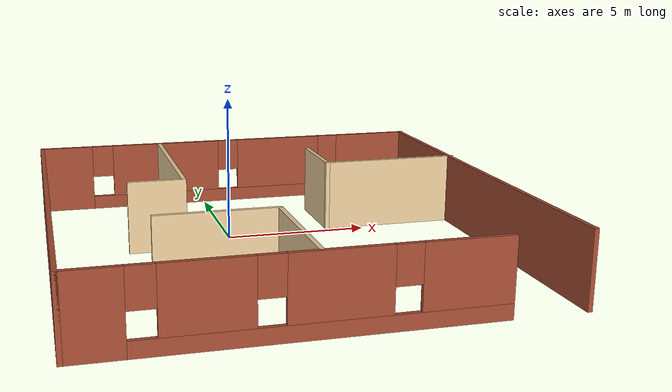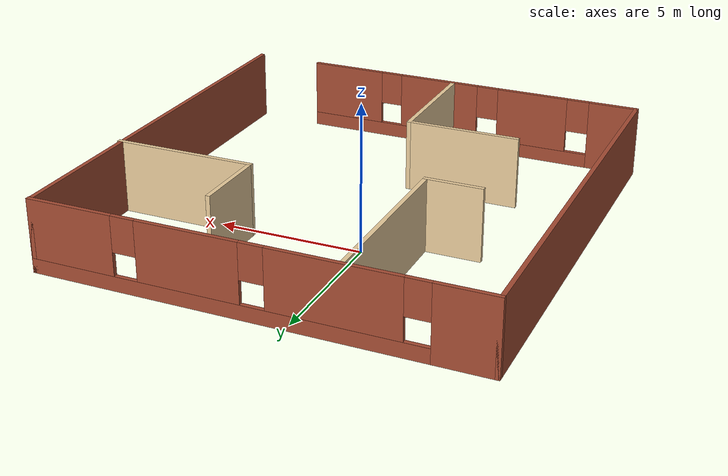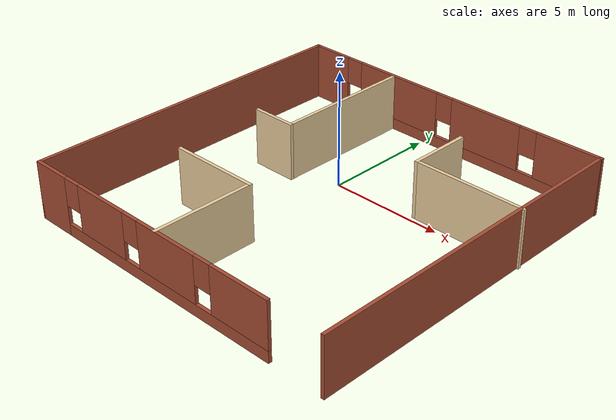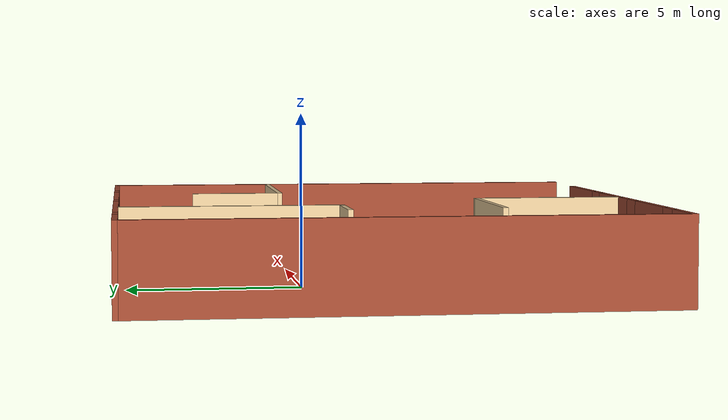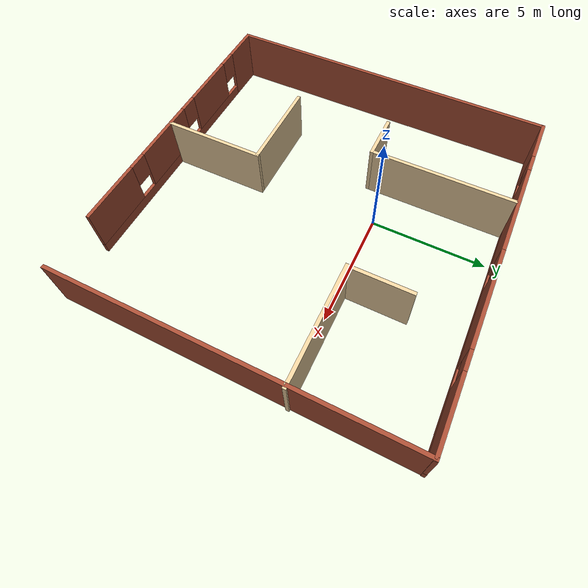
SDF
<?xml version='1.0'?>
<sdf version='1.7'>
  <model name='gMaze6'>
    <pose>1.13811 -2.1707 0 0 -0 0</pose>
    <link name='Wall_0'>
      <pose>-0.025043 7.425 0 0 -0 0</pose>
      <visual name='Wall_0_Visual_0'>
        <pose>-6.50945 0 1.25 0 -0 0</pose>
        <geometry>
          <box>
            <size>1.98109 0.15 2.5</size>
          </box>
        </geometry>
        <material>
          <script>
            <uri>file://media/materials/scripts/gazebo.material</uri>
            <name>Gazebo/Bricks</name>
          </script>
          <ambient>1 1 1 1</ambient>
        </material>
        <meta>
          <layer>0</layer>
        </meta>
      </visual>
      <collision name='Wall_0_Collision_0'>
        <geometry>
          <box>
            <size>1.98109 0.15 2.5</size>
          </box>
        </geometry>
        <pose>-6.50945 0 1.25 0 -0 0</pose>
      </collision>
      <visual name='Wall_0_Visual_1'>
        <pose>0.990545 0 0.25 0 -0 0</pose>
        <geometry>
          <box>
            <size>13.0189 0.15 0.5</size>
          </box>
        </geometry>
        <material>
          <script>
            <uri>file://media/materials/scripts/gazebo.material</uri>
            <name>Gazebo/Bricks</name>
          </script>
          <ambient>1 1 1 1</ambient>
        </material>
        <meta>
          <layer>0</layer>
        </meta>
      </visual>
      <collision name='Wall_0_Collision_1'>
        <geometry>
          <box>
            <size>13.0189 0.15 0.5</size>
          </box>
        </geometry>
        <pose>0.990545 0 0.25 0 -0 0</pose>
      </collision>
      <visual name='Wall_0_Visual_2'>
        <pose>-2.60363 0 1.5 0 -0 0</pose>
        <geometry>
          <box>
            <size>4.23056 0.15 2</size>
          </box>
        </geometry>
        <material>
          <script>
            <uri>file://media/materials/scripts/gazebo.material</uri>
            <name>Gazebo/Bricks</name>
          </script>
          <ambient>1 1 1 1</ambient>
        </material>
        <meta>
          <layer>0</layer>
        </meta>
      </visual>
      <collision name='Wall_0_Collision_2'>
        <geometry>
          <box>
            <size>4.23056 0.15 2</size>
          </box>
        </geometry>
        <pose>-2.60363 0 1.5 0 -0 0</pose>
      </collision>
      <visual name='Wall_0_Visual_3'>
        <pose>2.02238 0 1.5 0 -0 0</pose>
        <geometry>
          <box>
            <size>3.42145 0.15 2</size>
          </box>
        </geometry>
        <material>
          <script>
            <uri>file://media/materials/scripts/gazebo.material</uri>
            <name>Gazebo/Bricks</name>
          </script>
          <ambient>1 1 1 1</ambient>
        </material>
        <meta>
          <layer>0</layer>
        </meta>
      </visual>
      <collision name='Wall_0_Collision_3'>
        <geometry>
          <box>
            <size>3.42145 0.15 2</size>
          </box>
        </geometry>
        <pose>2.02238 0 1.5 0 -0 0</pose>
      </collision>
      <visual name='Wall_0_Visual_4'>
        <pose>6.01655 0 1.5 0 -0 0</pose>
        <geometry>
          <box>
            <size>2.9669 0.15 2</size>
          </box>
        </geometry>
        <material>
          <script>
            <uri>file://media/materials/scripts/gazebo.material</uri>
            <name>Gazebo/Bricks</name>
          </script>
          <ambient>1 1 1 1</ambient>
        </material>
        <meta>
          <layer>0</layer>
        </meta>
      </visual>
      <collision name='Wall_0_Collision_4'>
        <geometry>
          <box>
            <size>2.9669 0.15 2</size>
          </box>
        </geometry>
        <pose>6.01655 0 1.5 0 -0 0</pose>
      </collision>
      <visual name='Wall_0_Visual_5'>
        <pose>-5.11891 0 1.9 0 -0 0</pose>
        <geometry>
          <box>
            <size>0.8 0.15 1.2</size>
          </box>
        </geometry>
        <material>
          <script>
            <uri>file://media/materials/scripts/gazebo.material</uri>
            <name>Gazebo/Bricks</name>
          </script>
          <ambient>1 1 1 1</ambient>
        </material>
        <meta>
          <layer>0</layer>
        </meta>
      </visual>
      <collision name='Wall_0_Collision_5'>
        <geometry>
          <box>
            <size>0.8 0.15 1.2</size>
          </box>
        </geometry>
        <pose>-5.11891 0 1.9 0 -0 0</pose>
      </collision>
      <visual name='Wall_0_Visual_6'>
        <pose>-0.088347 0 1.9 0 -0 0</pose>
        <geometry>
          <box>
            <size>0.8 0.15 1.2</size>
          </box>
        </geometry>
        <material>
          <script>
            <uri>file://media/materials/scripts/gazebo.material</uri>
            <name>Gazebo/Bricks</name>
          </script>
          <ambient>1 1 1 1</ambient>
        </material>
        <meta>
          <layer>0</layer>
        </meta>
      </visual>
      <collision name='Wall_0_Collision_6'>
        <geometry>
          <box>
            <size>0.8 0.15 1.2</size>
          </box>
        </geometry>
        <pose>-0.088347 0 1.9 0 -0 0</pose>
      </collision>
      <visual name='Wall_0_Visual_7'>
        <pose>4.1331 0 1.9 0 -0 0</pose>
        <geometry>
          <box>
            <size>0.8 0.15 1.2</size>
          </box>
        </geometry>
        <material>
          <script>
            <uri>file://media/materials/scripts/gazebo.material</uri>
            <name>Gazebo/Bricks</name>
          </script>
          <ambient>1 1 1 1</ambient>
        </material>
        <meta>
          <layer>0</layer>
        </meta>
      </visual>
      <collision name='Wall_0_Collision_7'>
        <geometry>
          <box>
            <size>0.8 0.15 1.2</size>
          </box>
        </geometry>
        <pose>4.1331 0 1.9 0 -0 0</pose>
      </collision>
    </link>
    <link name='Wall_1'>
      <collision name='Wall_1_Collision'>
        <geometry>
          <box>
            <size>15 0.15 2.5</size>
          </box>
        </geometry>
        <pose>0 0 1.25 0 -0 0</pose>
      </collision>
      <visual name='Wall_1_Visual'>
        <pose>0 0 1.25 0 -0 0</pose>
        <geometry>
          <box>
            <size>15 0.15 2.5</size>
          </box>
        </geometry>
        <material>
          <script>
            <uri>file://media/materials/scripts/gazebo.material</uri>
            <name>Gazebo/Bricks</name>
          </script>
          <ambient>1 1 1 1</ambient>
        </material>
        <meta>
          <layer>0</layer>
        </meta>
      </visual>
      <pose>7.37984 -0 0 0 -0 -1.5708</pose>
    </link>
    <link name='Wall_3'>
      <collision name='Wall_3_Collision'>
        <geometry>
          <box>
            <size>15 0.15 2.5</size>
          </box>
        </geometry>
        <pose>0 0 1.25 0 -0 0</pose>
      </collision>
      <visual name='Wall_3_Visual'>
        <pose>0 0 1.25 0 -0 0</pose>
        <geometry>
          <box>
            <size>15 0.15 2.5</size>
          </box>
        </geometry>
        <material>
          <script>
            <uri>file://media/materials/scripts/gazebo.material</uri>
            <name>Gazebo/Bricks</name>
          </script>
          <ambient>1 1 1 1</ambient>
        </material>
        <meta>
          <layer>0</layer>
        </meta>
      </visual>
      <pose>-7.45004 -0 0 0 -0 -1.5708</pose>
    </link>
    <link name='Wall_4'>
      <pose>-1.27504 -7.425 0 0 -0 0</pose>
      <visual name='Wall_4_Visual_0'>
        <pose>-5.37558 0 1.25 0 -0 0</pose>
        <geometry>
          <box>
            <size>1.74884 0.15 2.5</size>
          </box>
        </geometry>
        <material>
          <script>
            <uri>file://media/materials/scripts/gazebo.material</uri>
            <name>Gazebo/Bricks</name>
          </script>
          <ambient>1 1 1 1</ambient>
        </material>
        <meta>
          <layer>0</layer>
        </meta>
      </visual>
      <collision name='Wall_4_Collision_0'>
        <geometry>
          <box>
            <size>1.74884 0.15 2.5</size>
          </box>
        </geometry>
        <pose>-5.37558 0 1.25 0 -0 0</pose>
      </collision>
      <visual name='Wall_4_Visual_1'>
        <pose>0.87442 0 0.25 0 -0 0</pose>
        <geometry>
          <box>
            <size>10.7512 0.15 0.5</size>
          </box>
        </geometry>
        <material>
          <script>
            <uri>file://media/materials/scripts/gazebo.material</uri>
            <name>Gazebo/Bricks</name>
          </script>
          <ambient>1 1 1 1</ambient>
        </material>
        <meta>
          <layer>0</layer>
        </meta>
      </visual>
      <collision name='Wall_4_Collision_1'>
        <geometry>
          <box>
            <size>10.7512 0.15 0.5</size>
          </box>
        </geometry>
        <pose>0.87442 0 0.25 0 -0 0</pose>
      </collision>
      <visual name='Wall_4_Visual_2'>
        <pose>-2.40199 0 1.5 0 -0 0</pose>
        <geometry>
          <box>
            <size>2.59834 0.15 2</size>
          </box>
        </geometry>
        <material>
          <script>
            <uri>file://media/materials/scripts/gazebo.material</uri>
            <name>Gazebo/Bricks</name>
          </script>
          <ambient>1 1 1 1</ambient>
        </material>
        <meta>
          <layer>0</layer>
        </meta>
      </visual>
      <collision name='Wall_4_Collision_2'>
        <geometry>
          <box>
            <size>2.59834 0.15 2</size>
          </box>
        </geometry>
        <pose>-2.40199 0 1.5 0 -0 0</pose>
      </collision>
      <visual name='Wall_4_Visual_3'>
        <pose>1.19683 0 1.5 0 -0 0</pose>
        <geometry>
          <box>
            <size>2.99931 0.15 2</size>
          </box>
        </geometry>
        <material>
          <script>
            <uri>file://media/materials/scripts/gazebo.material</uri>
            <name>Gazebo/Bricks</name>
          </script>
          <ambient>1 1 1 1</ambient>
        </material>
        <meta>
          <layer>0</layer>
        </meta>
      </visual>
      <collision name='Wall_4_Collision_3'>
        <geometry>
          <box>
            <size>2.99931 0.15 2</size>
          </box>
        </geometry>
        <pose>1.19683 0 1.5 0 -0 0</pose>
      </collision>
      <visual name='Wall_4_Visual_4'>
        <pose>4.87324 0 1.5 0 -0 0</pose>
        <geometry>
          <box>
            <size>2.75352 0.15 2</size>
          </box>
        </geometry>
        <material>
          <script>
            <uri>file://media/materials/scripts/gazebo.material</uri>
            <name>Gazebo/Bricks</name>
          </script>
          <ambient>1 1 1 1</ambient>
        </material>
        <meta>
          <layer>0</layer>
        </meta>
      </visual>
      <collision name='Wall_4_Collision_4'>
        <geometry>
          <box>
            <size>2.75352 0.15 2</size>
          </box>
        </geometry>
        <pose>4.87324 0 1.5 0 -0 0</pose>
      </collision>
      <visual name='Wall_4_Visual_5'>
        <pose>-4.10116 0 1.9 0 -0 0</pose>
        <geometry>
          <box>
            <size>0.8 0.15 1.2</size>
          </box>
        </geometry>
        <material>
          <script>
            <uri>file://media/materials/scripts/gazebo.material</uri>
            <name>Gazebo/Bricks</name>
          </script>
          <ambient>1 1 1 1</ambient>
        </material>
        <meta>
          <layer>0</layer>
        </meta>
      </visual>
      <collision name='Wall_4_Collision_5'>
        <geometry>
          <box>
            <size>0.8 0.15 1.2</size>
          </box>
        </geometry>
        <pose>-4.10116 0 1.9 0 -0 0</pose>
      </collision>
      <visual name='Wall_4_Visual_6'>
        <pose>-0.702821 0 1.9 0 -0 0</pose>
        <geometry>
          <box>
            <size>0.8 0.15 1.2</size>
          </box>
        </geometry>
        <material>
          <script>
            <uri>file://media/materials/scripts/gazebo.material</uri>
            <name>Gazebo/Bricks</name>
          </script>
          <ambient>1 1 1 1</ambient>
        </material>
        <meta>
          <layer>0</layer>
        </meta>
      </visual>
      <collision name='Wall_4_Collision_6'>
        <geometry>
          <box>
            <size>0.8 0.15 1.2</size>
          </box>
        </geometry>
        <pose>-0.702821 0 1.9 0 -0 0</pose>
      </collision>
      <visual name='Wall_4_Visual_7'>
        <pose>3.09648 0 1.9 0 -0 0</pose>
        <geometry>
          <box>
            <size>0.8 0.15 1.2</size>
          </box>
        </geometry>
        <material>
          <script>
            <uri>file://media/materials/scripts/gazebo.material</uri>
            <name>Gazebo/Bricks</name>
          </script>
          <ambient>1 1 1 1</ambient>
        </material>
        <meta>
          <layer>0</layer>
        </meta>
      </visual>
      <collision name='Wall_4_Collision_7'>
        <geometry>
          <box>
            <size>0.8 0.15 1.2</size>
          </box>
        </geometry>
        <pose>3.09648 0 1.9 0 -0 0</pose>
      </collision>
    </link>
    <link name='Wall_47'>
      <collision name='Wall_47_Collision'>
        <geometry>
          <box>
            <size>5 0.15 2.5</size>
          </box>
        </geometry>
        <pose>0 0 1.25 0 -0 0</pose>
      </collision>
      <visual name='Wall_47_Visual'>
        <pose>0 0 1.25 0 -0 0</pose>
        <geometry>
          <box>
            <size>5 0.15 2.5</size>
          </box>
        </geometry>
        <material>
          <script>
            <uri>file://media/materials/scripts/gazebo.material</uri>
            <name>Gazebo/Grey</name>
          </script>
          <ambient>0.921569 0.807843 0.615686 1</ambient>
        </material>
        <meta>
          <layer>0</layer>
        </meta>
      </visual>
      <pose>5.02504 2.45185 0 0 -0 3.14159</pose>
    </link>
    <link name='Wall_48'>
      <collision name='Wall_48_Collision'>
        <geometry>
          <box>
            <size>2.75 0.15 2.5</size>
          </box>
        </geometry>
        <pose>0 0 1.25 0 -0 0</pose>
      </collision>
      <visual name='Wall_48_Visual'>
        <pose>0 0 1.25 0 -0 0</pose>
        <geometry>
          <box>
            <size>2.75 0.15 2.5</size>
          </box>
        </geometry>
        <material>
          <script>
            <uri>file://media/materials/scripts/gazebo.material</uri>
            <name>Gazebo/Grey</name>
          </script>
          <ambient>0.921569 0.807843 0.615686 1</ambient>
        </material>
        <meta>
          <layer>0</layer>
        </meta>
      </visual>
      <pose>2.60004 3.75185 0 0 -0 1.5708</pose>
    </link>
    <link name='Wall_50'>
      <collision name='Wall_50_Collision'>
        <geometry>
          <box>
            <size>6.25 0.15 2.5</size>
          </box>
        </geometry>
        <pose>0 0 1.25 0 -0 0</pose>
      </collision>
      <visual name='Wall_50_Visual'>
        <pose>0 0 1.25 0 -0 0</pose>
        <geometry>
          <box>
            <size>6.25 0.15 2.5</size>
          </box>
        </geometry>
        <material>
          <script>
            <uri>file://media/materials/scripts/gazebo.material</uri>
            <name>Gazebo/Grey</name>
          </script>
          <ambient>0.921569 0.807843 0.615686 1</ambient>
        </material>
        <meta>
          <layer>0</layer>
        </meta>
      </visual>
      <pose>-2.89251 4.25652 0 0 -0 -1.5708</pose>
    </link>
    <link name='Wall_51'>
      <collision name='Wall_51_Collision'>
        <geometry>
          <box>
            <size>2 0.15 2.5</size>
          </box>
        </geometry>
        <pose>0 0 1.25 0 -0 0</pose>
      </collision>
      <visual name='Wall_51_Visual'>
        <pose>0 0 1.25 0 -0 0</pose>
        <geometry>
          <box>
            <size>2 0.15 2.5</size>
          </box>
        </geometry>
        <material>
          <script>
            <uri>file://media/materials/scripts/gazebo.material</uri>
            <name>Gazebo/Grey</name>
          </script>
          <ambient>0.921569 0.807843 0.615686 1</ambient>
        </material>
        <meta>
          <layer>0</layer>
        </meta>
      </visual>
      <pose>-3.81751 1.20652 0 0 -0 3.14159</pose>
    </link>
    <link name='Wall_53'>
      <collision name='Wall_53_Collision'>
        <geometry>
          <box>
            <size>4 0.15 2.5</size>
          </box>
        </geometry>
        <pose>0 0 1.25 0 -0 0</pose>
      </collision>
      <visual name='Wall_53_Visual'>
        <pose>0 0 1.25 0 -0 0</pose>
        <geometry>
          <box>
            <size>4 0.15 2.5</size>
          </box>
        </geometry>
        <material>
          <script>
            <uri>file://media/materials/scripts/gazebo.material</uri>
            <name>Gazebo/Grey</name>
          </script>
          <ambient>0.921569 0.807843 0.615686 1</ambient>
        </material>
        <meta>
          <layer>0</layer>
        </meta>
      </visual>
      <pose>-2.55056 -3.07121 0 0 -0 0</pose>
    </link>
    <link name='Wall_54'>
      <collision name='Wall_54_Collision'>
        <geometry>
          <box>
            <size>4.5 0.15 2.5</size>
          </box>
        </geometry>
        <pose>0 0 1.25 0 -0 0</pose>
      </collision>
      <visual name='Wall_54_Visual'>
        <pose>0 0 1.25 0 -0 0</pose>
        <geometry>
          <box>
            <size>4.5 0.15 2.5</size>
          </box>
        </geometry>
        <material>
          <script>
            <uri>file://media/materials/scripts/gazebo.material</uri>
            <name>Gazebo/Grey</name>
          </script>
          <ambient>0.921569 0.807843 0.615686 1</ambient>
        </material>
        <meta>
          <layer>0</layer>
        </meta>
      </visual>
      <pose>-0.625556 -5.24621 0 0 -0 -1.5708</pose>
    </link>
    <static>1</static>
  </model>
</sdf>
